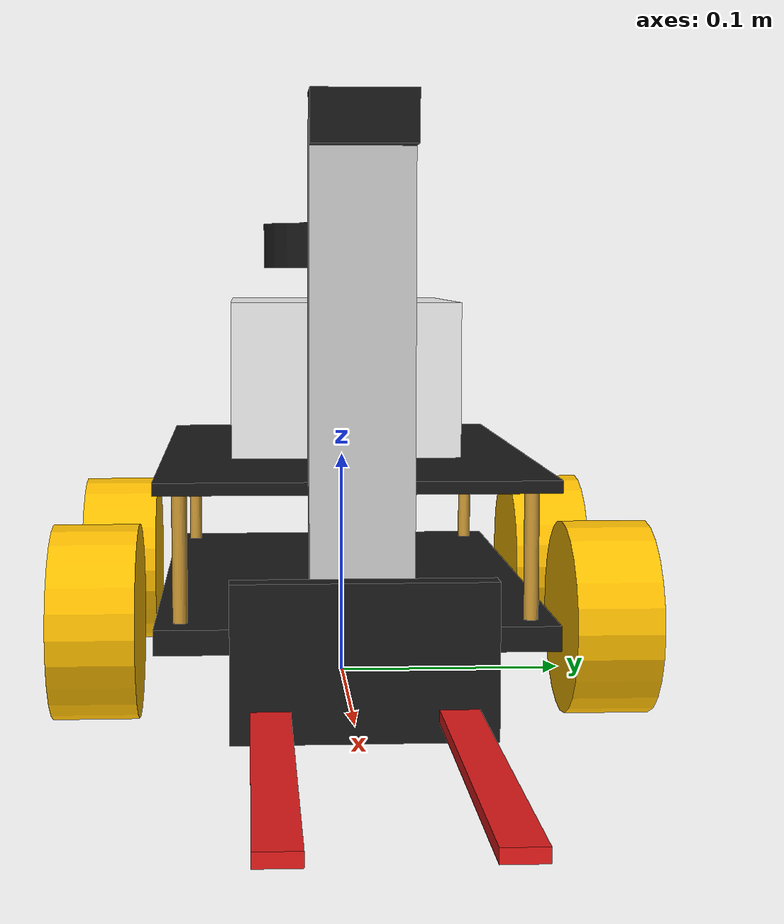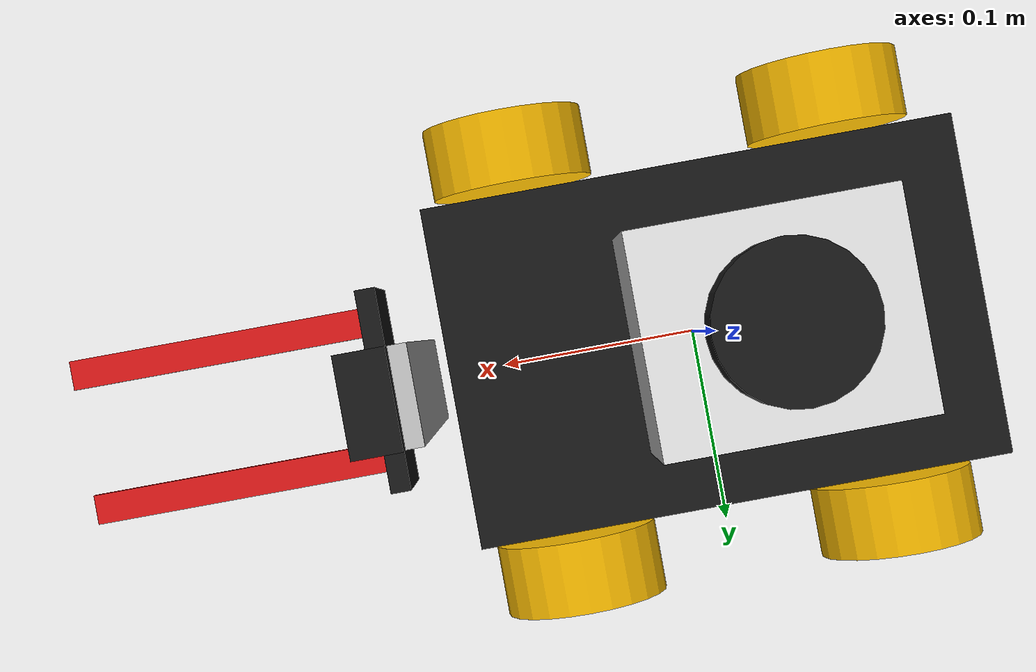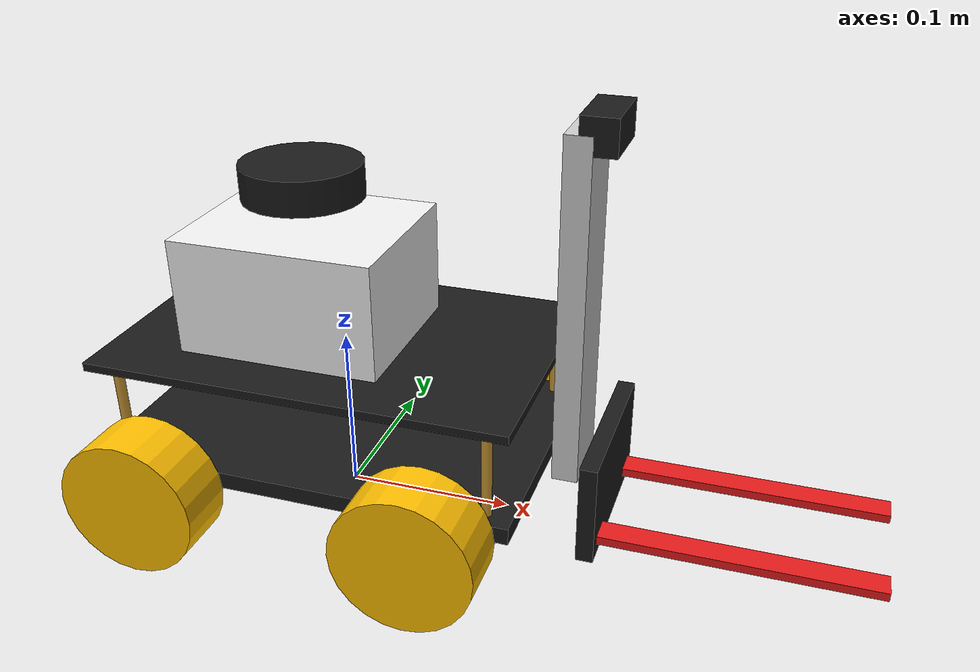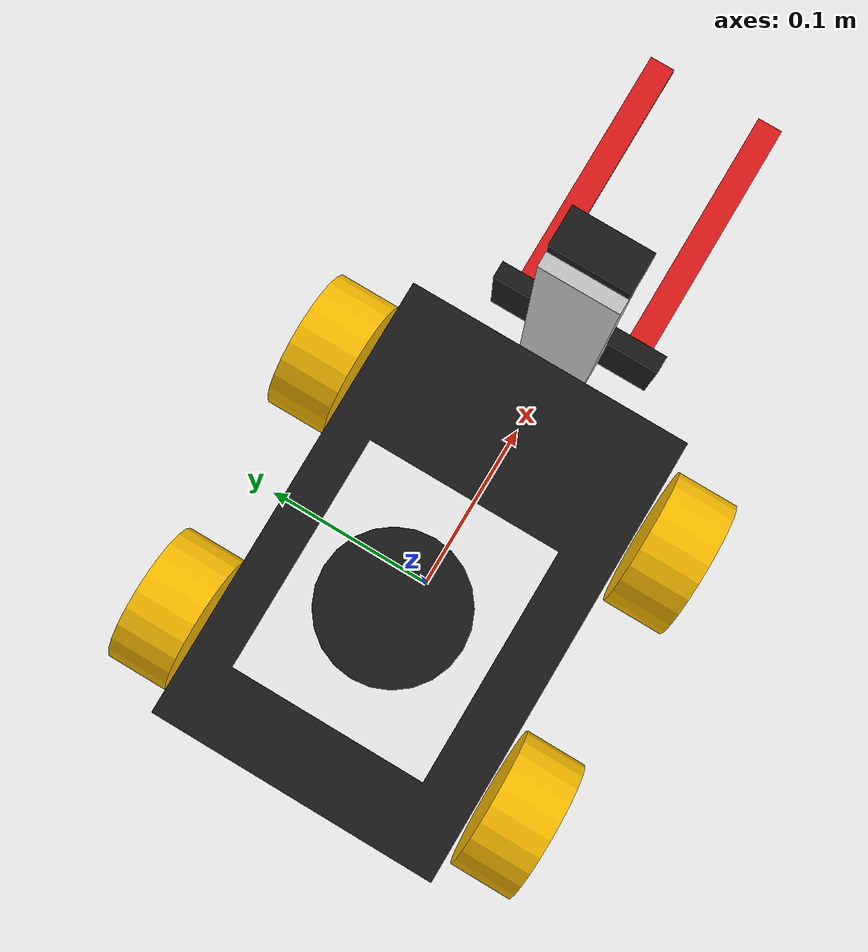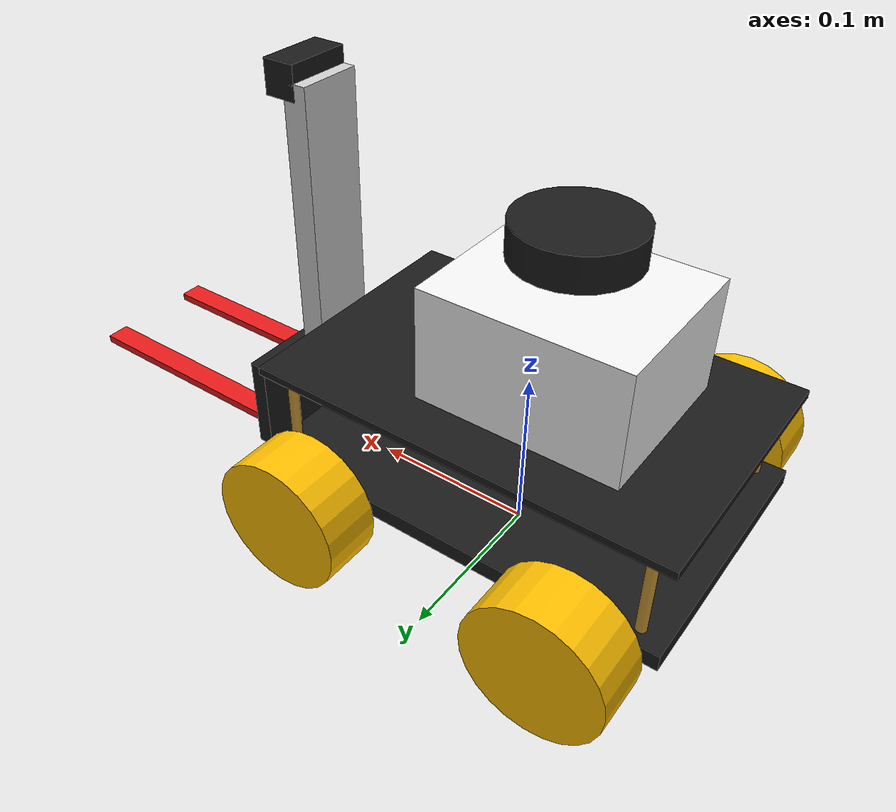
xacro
<?xml version="1.0"?>
<robot xmlns:xacro="http://www.ros.org/wiki/xacro" name="my_bot">

  <!-- [색상 팔레트] -->
  <material name="black"><color rgba="0.1 0.1 0.1 1"/></material>
  <material name="dark_grey"><color rgba="0.2 0.2 0.2 1"/></material>
  <material name="white"><color rgba="0.95 0.95 0.95 1"/></material>
  <material name="yellow"><color rgba="1 0.75 0 1"/></material>
  <material name="red"><color rgba="0.9 0.1 0.1 1"/></material>
  <material name="silver"><color rgba="0.8 0.8 0.8 1"/></material>
  <material name="gold"><color rgba="0.8 0.6 0.2 1"/></material>

  <!-- 1. 기본 좌표계 (Base Link) -->
  <link name="base_link"/>

  <!-- 2. 하부 데크 (Chassis) -->
  <joint name="chassis_joint" type="fixed">
    <parent link="base_link"/>
    <child link="chassis"/>
    <origin xyz="0 0 0.04"/>
  </joint>

  <link name="chassis">
    <visual>
      <geometry><box size="0.25 0.16 0.01"/></geometry>
      <material name="black"/>
    </visual>
    <collision>
      <geometry><box size="0.25 0.16 0.05"/></geometry>
    </collision>
    <inertial>
      <mass value="5.0"/>
      <inertia ixx="0.05" ixy="0" ixz="0" iyy="0.05" iyz="0" izz="0.05"/>
    </inertial>
  </link>
  <gazebo reference="chassis"><material>Gazebo/FlatBlack</material></gazebo>

  <!-- 3. 상부 데크 (Top Deck) -->
  <joint name="top_deck_joint" type="fixed">
    <parent link="chassis"/>
    <child link="top_deck"/>
    <origin xyz="0 0 0.06"/>
  </joint>

  <link name="top_deck">
    <visual>
      <geometry><box size="0.25 0.16 0.005"/></geometry>
      <material name="black"/>
    </visual>
    <collision>
      <geometry><box size="0.25 0.16 0.005"/></geometry>
    </collision>
    <inertial>
      <mass value="0.1"/>
      <inertia ixx="0.001" ixy="0" ixz="0" iyy="0.001" iyz="0" izz="0.001"/>
    </inertial>
  </link>
  <gazebo reference="top_deck"><material>Gazebo/FlatBlack</material></gazebo>

  <!-- 지지대 (Standoffs) -->
  <xacro:macro name="standoff" params="x y">
    <joint name="standoff_${x}_${y}" type="fixed">
      <parent link="chassis"/>
      <child link="pillar_${x}_${y}"/>
      <origin xyz="${x} ${y} 0.03"/>
    </joint>
    <link name="pillar_${x}_${y}">
      <visual>
        <geometry><cylinder radius="0.003" length="0.06"/></geometry>
        <material name="gold"/>
      </visual>
    </link>
    <gazebo reference="pillar_${x}_${y}"><material>Gazebo/Gold</material></gazebo>
  </xacro:macro>
  <xacro:standoff x="0.11" y="0.07"/>
  <xacro:standoff x="0.11" y="-0.07"/>
  <xacro:standoff x="-0.11" y="0.07"/>
  <xacro:standoff x="-0.11" y="-0.07"/>

  <!-- 4. 하얀색 박스 (PC) -->
  <joint name="box_joint" type="fixed">
    <parent link="top_deck"/>
    <child link="white_box"/>
    <origin xyz="-0.02 0 0.035"/>
  </joint>

  <link name="white_box">
    <visual>
      <geometry><box size="0.12 0.10 0.07"/></geometry>
      <material name="white"/>
    </visual>
    <collision>
      <geometry><box size="0.12 0.10 0.07"/></geometry>
    </collision>
    <inertial>
      <mass value="0.5"/>
      <inertia ixx="0.01" ixy="0" ixz="0" iyy="0.01" iyz="0" izz="0.01"/>
    </inertial>
  </link>
  <gazebo reference="white_box"><material>Gazebo/White</material></gazebo>

  <!-- 5. 바퀴 (Mecanum Wheels) -->
  <xacro:macro name="wheel" params="prefix x y">
    <joint name="${prefix}_wheel_joint" type="continuous">
      <parent link="base_link"/>
      <child link="${prefix}_wheel"/>
      <origin xyz="${x} ${y} 0.04" rpy="-1.5708 0 0"/>
      <axis xyz="0 0 1"/>
    </joint>

    <link name="${prefix}_wheel">
      <visual>
        <geometry><cylinder radius="0.04" length="0.035"/></geometry>
        <material name="yellow"/>
      </visual>
      <collision>
        <geometry><cylinder radius="0.04" length="0.035"/></geometry>
      </collision>
      <inertial>
        <mass value="0.4"/>
        <inertia ixx="0.001" ixy="0" ixz="0" iyy="0.001" iyz="0" izz="0.001"/>
      </inertial>
    </link>
    <gazebo reference="${prefix}_wheel"><material>Gazebo/Yellow</material></gazebo>
  </xacro:macro>

  <xacro:wheel prefix="front_left"  x="0.08"  y="0.105"/>
  <xacro:wheel prefix="front_right" x="0.08"  y="-0.105"/>
  <xacro:wheel prefix="rear_left"   x="-0.08" y="0.105"/>
  <xacro:wheel prefix="rear_right"  x="-0.08" y="-0.105"/>

  <!-- 6. 마스트 (Mast) -->
  <joint name="mast_joint" type="fixed">
    <parent link="chassis"/>
    <child link="mast"/>
    <origin xyz="0.14 0 0.10"/>
  </joint>

  <link name="mast">
    <visual>
      <geometry><box size="0.015 0.04 0.20"/></geometry>
      <material name="silver"/>
    </visual>
    <collision>
      <geometry><box size="0.015 0.04 0.20"/></geometry>
    </collision>
    <inertial>
      <mass value="0.2"/>
      <inertia ixx="0.001" ixy="0" ixz="0" iyy="0.001" iyz="0" izz="0.001"/>
    </inertial>
  </link>
  <gazebo reference="mast"><material>Gazebo/Grey</material></gazebo>

  <!-- 카메라 (Camera) -->
  <joint name="camera_joint" type="fixed">
    <parent link="mast"/>
    <child link="camera_link"/>
    <origin xyz="0.01 0 0.10"/>
  </joint>
  <link name="camera_link">
    <visual>
      <geometry><box size="0.02 0.04 0.02"/></geometry>
      <material name="black"/>
    </visual>
  </link>

  <!-- 7. 리프트 및 지게발 -->
  <joint name="lift_joint" type="prismatic">
    <parent link="mast"/>
    <child link="lift_plate"/>
    <origin xyz="0.02 0 -0.1"/>
    <axis xyz="0 0 1"/>
    <limit lower="0.0" upper="0.12" effort="500" velocity="0.2"/>
  </joint>

  <link name="lift_plate">
    <visual>
      <geometry><box size="0.01 0.10 0.06"/></geometry>
      <material name="black"/>
    </visual>
    <collision>
      <geometry><box size="0.01 0.10 0.06"/></geometry>
    </collision>
    <inertial>
      <mass value="0.1"/>
      <inertia ixx="0.001" ixy="0" ixz="0" iyy="0.001" iyz="0" izz="0.001"/>
    </inertial>
  </link>

  <joint name="fork_left_joint" type="fixed">
    <parent link="lift_plate"/>
    <child link="fork_left"/>
    <origin xyz="0.08 0.035 -0.02"/>
  </joint>
  <link name="fork_left">
    <visual>
      <geometry><box size="0.16 0.015 0.005"/></geometry>
      <material name="red"/>
    </visual>
    <collision>
      <geometry><box size="0.16 0.015 0.005"/></geometry>
    </collision>
  </link>

  <joint name="fork_right_joint" type="fixed">
    <parent link="lift_plate"/>
    <child link="fork_right"/>
    <origin xyz="0.08 -0.035 -0.02"/>
  </joint>
  <link name="fork_right">
    <visual>
      <geometry><box size="0.16 0.015 0.005"/></geometry>
      <material name="red"/>
    </visual>
    <collision>
      <geometry><box size="0.16 0.015 0.005"/></geometry>
    </collision>
  </link>

  <!-- 9. 라이다 센서 (LiDAR) -->
  <joint name="laser_joint" type="fixed">
    <parent link="white_box"/>
    <child link="laser_frame"/>
    <origin xyz="0 0 0.06" rpy="0 0 0"/>
  </joint>

  <link name="laser_frame">
    <visual>
      <geometry><cylinder radius="0.035" length="0.02"/></geometry>
      <material name="black"/>
    </visual>
    <collision>
      <geometry><cylinder radius="0.035" length="0.02"/></geometry>
    </collision>
    <inertial>
      <mass value="0.1"/>
      <inertia ixx="0.001" ixy="0" ixz="0" iyy="0.001" iyz="0" izz="0.001"/>
    </inertial>
  </link>

  <gazebo reference="laser_frame">
    <sensor name="lidar" type="gpu_lidar">
      <pose>0 0 0 0 0 0</pose>
      <always_on>true</always_on>
      <visualize>true</visualize>
      <update_rate>10</update_rate>
      <topic>scan</topic>
      <frame_id>laser_frame</frame_id>
      <ray>
        <scan>
          <horizontal>
            <samples>500</samples>
            <resolution>1</resolution>
            <min_angle>-3.14159</min_angle>
            <max_angle>3.14159</max_angle>
          </horizontal>
        </scan>
        <range>
          <min>0.12</min>
          <max>10.0</max>
          <resolution>0.015</resolution>
        </range>
        <noise>
          <type>gaussian</type>
          <mean>0.0</mean>
          <stddev>0.01</stddev>
        </noise>
      </ray>
    </sensor>
  </gazebo>

  <gazebo>
    <plugin filename="gz-sim-sensors-system" name="gz::sim::systems::Sensors">
      <render_engine>ogre2</render_engine>
    </plugin>
    <plugin filename="gz-sim-diff-drive-system" name="gz::sim::systems::DiffDrive">
      <left_joint>rear_left_wheel_joint</left_joint>
      <right_joint>rear_right_wheel_joint</right_joint>
      <wheel_separation>0.21</wheel_separation>
      <wheel_radius>0.04</wheel_radius>
      <odom_publish_frequency>50</odom_publish_frequency>
      <topic>cmd_vel</topic>
      <odom_topic>odom</odom_topic>
      <frame_id>odom</frame_id>
      <child_frame_id>base_link</child_frame_id>
      <publish_odom_tf>true</publish_odom_tf>
      <publish_wheel_tf>true</publish_wheel_tf>
    </plugin>

    <plugin filename="gz-sim-joint-state-publisher-system" name="gz::sim::systems::JointStatePublisher"/>
  </gazebo>

  <!-- 앞바퀴 마찰력 제거 설정 -->
  <gazebo reference="front_left_wheel">
    <mu1>0.01</mu1>
    <mu2>0.01</mu2>
  </gazebo>
  <gazebo reference="front_right_wheel">
    <mu1>0.01</mu1>
    <mu2>0.01</mu2>
  </gazebo>

</robot>
